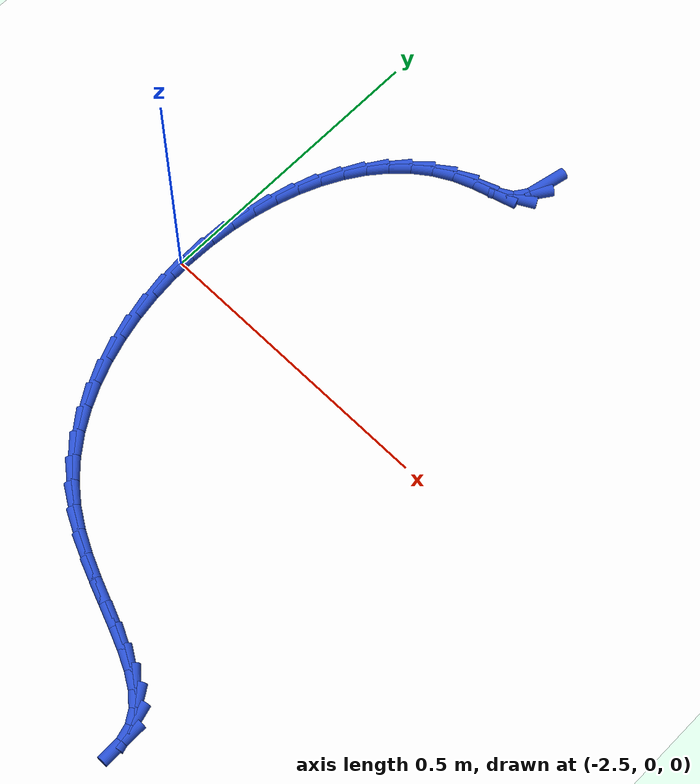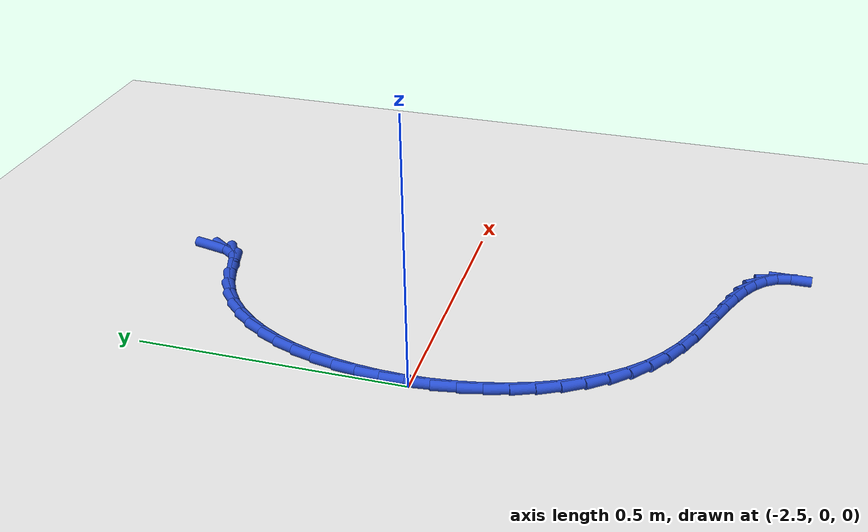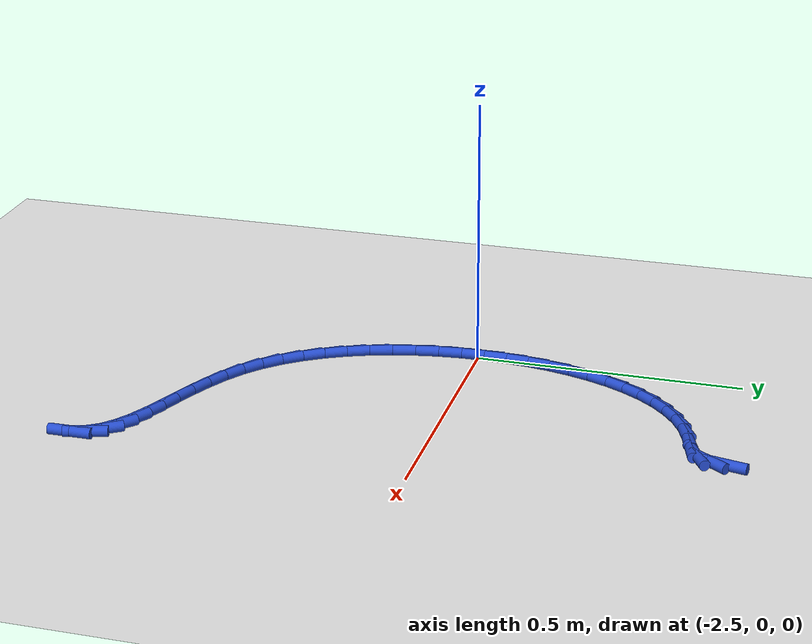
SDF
<sdf version="1.6">
 <world name="default">
  <model name="ground_plane">
   <static>1</static>
   <link name="link">
    <collision name="collision">
     <geometry><plane><normal>0 0 1</normal><size>100 100</size></plane></geometry>
     <surface><friction><ode><mu>100</mu><mu2>50</mu2></ode></friction></surface>
    </collision>
    <visual name="visual">
     <cast_shadows>0</cast_shadows>
     <geometry><plane><normal>0 0 1</normal><size>100 100</size></plane></geometry>
     <material>
      <script><uri>file://media/materials/scripts/gazebo.material</uri><name>Gazebo/WhiteGlow</name></script>
     </material>
    </visual>
   </link>
  </model>
  <model name="line">
   <link name="link_101">
    <pose>-2.1767041656061497 0.5107566457027964 0.01 0 1.57 1.359561104801155</pose>
    <collision name="collision">
     <geometry><cylinder><radius>0.01</radius><length>0.08</length></cylinder></geometry>
    </collision>
    <visual name="visual">
     <material>
      <script><name>Gazebo/Blue</name><uri>file://media/materials/scripts/gazebo.material</uri></script>
     </material>
     <geometry><cylinder><radius>0.01</radius><length>0.08</length></cylinder></geometry>
    </visual>
   </link>
   <link name="link_102">
    <pose>-2.182960266303349 0.48158171489679447 0.01 0 1.57 0.9732929426262962</pose>
    <collision name="collision">
     <geometry><cylinder><radius>0.01</radius><length>0.08</length></cylinder></geometry>
    </collision>
    <visual name="visual">
     <material>
      <script><name>Gazebo/Blue</name><uri>file://media/materials/scripts/gazebo.material</uri></script>
     </material>
     <geometry><cylinder><radius>0.01</radius><length>0.08</length></cylinder></geometry>
    </visual>
   </link>
   <link name="link_103">
    <pose>-2.1982512892744723 0.4591107092444293 0.01 0 1.57 0.5069065793528837</pose>
    <collision name="collision">
     <geometry><cylinder><radius>0.01</radius><length>0.08</length></cylinder></geometry>
    </collision>
    <visual name="visual">
     <material>
      <script><name>Gazebo/Blue</name><uri>file://media/materials/scripts/gazebo.material</uri></script>
     </material>
     <geometry><cylinder><radius>0.01</radius><length>0.08</length></cylinder></geometry>
    </visual>
   </link>
   <link name="link_104">
    <pose>-2.22467470687833 0.44443766862666684 0.01 0 1.57 0.28050700358085706</pose>
    <collision name="collision">
     <geometry><cylinder><radius>0.01</radius><length>0.08</length></cylinder></geometry>
    </collision>
    <visual name="visual">
     <material>
      <script><name>Gazebo/Blue</name><uri>file://media/materials/scripts/gazebo.material</uri></script>
     </material>
     <geometry><cylinder><radius>0.01</radius><length>0.08</length></cylinder></geometry>
    </visual>
   </link>
   <link name="link_105">
    <pose>-2.259283496235016 0.43446676108739046 0.01 0 1.57 0.35877112654474724</pose>
    <collision name="collision">
     <geometry><cylinder><radius>0.01</radius><length>0.08</length></cylinder></geometry>
    </collision>
    <visual name="visual">
     <material>
      <script><name>Gazebo/Blue</name><uri>file://media/materials/scripts/gazebo.material</uri></script>
     </material>
     <geometry><cylinder><radius>0.01</radius><length>0.08</length></cylinder></geometry>
    </visual>
   </link>
   <link name="link_106">
    <pose>-2.293570661433123 0.42160905629376294 0.01 0 1.57 0.5045482568140435</pose>
    <collision name="collision">
     <geometry><cylinder><radius>0.01</radius><length>0.08</length></cylinder></geometry>
    </collision>
    <visual name="visual">
     <material>
      <script><name>Gazebo/Blue</name><uri>file://media/materials/scripts/gazebo.material</uri></script>
     </material>
     <geometry><cylinder><radius>0.01</radius><length>0.08</length></cylinder></geometry>
    </visual>
   </link>
   <link name="link_107">
    <pose>-2.325244186083456 0.4041182103727589 0.01 0 1.57 0.6430362499847649</pose>
    <collision name="collision">
     <geometry><cylinder><radius>0.01</radius><length>0.08</length></cylinder></geometry>
    </collision>
    <visual name="visual">
     <material>
      <script><name>Gazebo/Blue</name><uri>file://media/materials/scripts/gazebo.material</uri></script>
     </material>
     <geometry><cylinder><radius>0.01</radius><length>0.08</length></cylinder></geometry>
    </visual>
   </link>
   <link name="link_108">
    <pose>-2.3542801436351652 0.3823623248923792 0.01 0 1.57 0.7714610408401509</pose>
    <collision name="collision">
     <geometry><cylinder><radius>0.01</radius><length>0.08</length></cylinder></geometry>
    </collision>
    <visual name="visual">
     <material>
      <script><name>Gazebo/Blue</name><uri>file://media/materials/scripts/gazebo.material</uri></script>
     </material>
     <geometry><cylinder><radius>0.01</radius><length>0.08</length></cylinder></geometry>
    </visual>
   </link>
   <link name="link_109">
    <pose>-2.380656428682404 0.35671119919806166 0.01 0 1.57 0.8887162696389381</pose>
    <collision name="collision">
     <geometry><cylinder><radius>0.01</radius><length>0.08</length></cylinder></geometry>
    </collision>
    <visual name="visual">
     <material>
      <script><name>Gazebo/Blue</name><uri>file://media/materials/scripts/gazebo.material</uri></script>
     </material>
     <geometry><cylinder><radius>0.01</radius><length>0.08</length></cylinder></geometry>
    </visual>
   </link>
   <link name="link_110">
    <pose>-2.4043509358193265 0.32753463263524324 0.01 0 1.57 0.9949716406126057</pose>
    <collision name="collision">
     <geometry><cylinder><radius>0.01</radius><length>0.08</length></cylinder></geometry>
    </collision>
    <visual name="visual">
     <material>
      <script><name>Gazebo/Blue</name><uri>file://media/materials/scripts/gazebo.material</uri></script>
     </material>
     <geometry><cylinder><radius>0.01</radius><length>0.08</length></cylinder></geometry>
    </visual>
   </link>
   <link name="link_111">
    <pose>-2.4253415596400854 0.2952024245493614 0.01 0 1.57 1.0912042136968283</pose>
    <collision name="collision">
     <geometry><cylinder><radius>0.01</radius><length>0.08</length></cylinder></geometry>
    </collision>
    <visual name="visual">
     <material>
      <script><name>Gazebo/Blue</name><uri>file://media/materials/scripts/gazebo.material</uri></script>
     </material>
     <geometry><cylinder><radius>0.01</radius><length>0.08</length></cylinder></geometry>
    </visual>
   </link>
   <link name="link_112">
    <pose>-2.4436061947388357 0.26008437428585274 0.01 0 1.57 1.1787930722720554</pose>
    <collision name="collision">
     <geometry><cylinder><radius>0.01</radius><length>0.08</length></cylinder></geometry>
    </collision>
    <visual name="visual">
     <material>
      <script><name>Gazebo/Blue</name><uri>file://media/materials/scripts/gazebo.material</uri></script>
     </material>
     <geometry><cylinder><radius>0.01</radius><length>0.08</length></cylinder></geometry>
    </visual>
   </link>
   <link name="link_113">
    <pose>-2.4591227357097303 0.22255028119015563 0.01 0 1.57 1.2592464931153644</pose>
    <collision name="collision">
     <geometry><cylinder><radius>0.01</radius><length>0.08</length></cylinder></geometry>
    </collision>
    <visual name="visual">
     <material>
      <script><name>Gazebo/Blue</name><uri>file://media/materials/scripts/gazebo.material</uri></script>
     </material>
     <geometry><cylinder><radius>0.01</radius><length>0.08</length></cylinder></geometry>
    </visual>
   </link>
   <link name="link_114">
    <pose>-2.4718690771469225 0.1829699446077068 0.01 0 1.57 1.3340505625070036</pose>
    <collision name="collision">
     <geometry><cylinder><radius>0.01</radius><length>0.08</length></cylinder></geometry>
    </collision>
    <visual name="visual">
     <material>
      <script><name>Gazebo/Blue</name><uri>file://media/materials/scripts/gazebo.material</uri></script>
     </material>
     <geometry><cylinder><radius>0.01</radius><length>0.08</length></cylinder></geometry>
    </visual>
   </link>
   <link name="link_115">
    <pose>-2.481823113644565 0.1417131638839429 0.01 0 1.57 1.404602658116131</pose>
    <collision name="collision">
     <geometry><cylinder><radius>0.01</radius><length>0.08</length></cylinder></geometry>
    </collision>
    <visual name="visual">
     <material>
      <script><name>Gazebo/Blue</name><uri>file://media/materials/scripts/gazebo.material</uri></script>
     </material>
     <geometry><cylinder><radius>0.01</radius><length>0.08</length></cylinder></geometry>
    </visual>
   </link>
   <link name="link_116">
    <pose>-2.4889627397968144 0.09914973836430252 0.01 0 1.57 1.4721956473652422</pose>
    <collision name="collision">
     <geometry><cylinder><radius>0.01</radius><length>0.08</length></cylinder></geometry>
    </collision>
    <visual name="visual">
     <material>
      <script><name>Gazebo/Blue</name><uri>file://media/materials/scripts/gazebo.material</uri></script>
     </material>
     <geometry><cylinder><radius>0.01</radius><length>0.08</length></cylinder></geometry>
    </visual>
   </link>
   <link name="link_117">
    <pose>-2.493265850197822 0.05564946739422212 0.01 0 1.57 1.5380289082575125</pose>
    <collision name="collision">
     <geometry><cylinder><radius>0.01</radius><length>0.08</length></cylinder></geometry>
    </collision>
    <visual name="visual">
     <material>
      <script><name>Gazebo/Blue</name><uri>file://media/materials/scripts/gazebo.material</uri></script>
     </material>
     <geometry><cylinder><radius>0.01</radius><length>0.08</length></cylinder></geometry>
    </visual>
   </link>
   <link name="link_118">
    <pose>-2.494710339441741 0.011582150319139218 0.01 0 1.57 -1.5383610445736737</pose>
    <collision name="collision">
     <geometry><cylinder><radius>0.01</radius><length>0.08</length></cylinder></geometry>
    </collision>
    <visual name="visual">
     <material>
      <script><name>Gazebo/Blue</name><uri>file://media/materials/scripts/gazebo.material</uri></script>
     </material>
     <geometry><cylinder><radius>0.01</radius><length>0.08</length></cylinder></geometry>
    </visual>
   </link>
   <link name="link_119">
    <pose>-2.4932741021227267 -0.03268241351550969 0.01 0 1.57 -1.4727027519654023</pose>
    <collision name="collision">
     <geometry><cylinder><radius>0.01</radius><length>0.08</length></cylinder></geometry>
    </collision>
    <visual name="visual">
     <material>
      <script><name>Gazebo/Blue</name><uri>file://media/materials/scripts/gazebo.material</uri></script>
     </material>
     <geometry><cylinder><radius>0.01</radius><length>0.08</length></cylinder></geometry>
    </visual>
   </link>
   <link name="link_120">
    <pose>-2.488935032834932 -0.07677442476428605 0.01 0 1.57 -1.4055196317840981</pose>
    <collision name="collision">
     <geometry><cylinder><radius>0.01</radius><length>0.08</length></cylinder></geometry>
    </collision>
    <visual name="visual">
     <material>
      <script><name>Gazebo/Blue</name><uri>file://media/materials/scripts/gazebo.material</uri></script>
     </material>
     <geometry><cylinder><radius>0.01</radius><length>0.08</length></cylinder></geometry>
    </visual>
   </link>
   <link name="link_121">
    <pose>-2.481671026172511 -0.12032408408175319 0.01 0 1.57 -1.335738225227873</pose>
    <collision name="collision">
     <geometry><cylinder><radius>0.01</radius><length>0.08</length></cylinder></geometry>
    </collision>
    <visual name="visual">
     <material>
      <script><name>Gazebo/Blue</name><uri>file://media/materials/scripts/gazebo.material</uri></script>
     </material>
     <geometry><cylinder><radius>0.01</radius><length>0.08</length></cylinder></geometry>
    </visual>
   </link>
   <link name="link_122">
    <pose>-2.471459976729616 -0.16296159212247394 0.01 0 1.57 -1.2622690884951209</pose>
    <collision name="collision">
     <geometry><cylinder><radius>0.01</radius><length>0.08</length></cylinder></geometry>
    </collision>
    <visual name="visual">
     <material>
      <script><name>Gazebo/Blue</name><uri>file://media/materials/scripts/gazebo.material</uri></script>
     </material>
     <geometry><cylinder><radius>0.01</radius><length>0.08</length></cylinder></geometry>
    </visual>
   </link>
   <link name="link_123">
    <pose>-2.458279779100401 -0.20431714954101082 0.01 0 1.57 -1.1840107762736802</pose>
    <collision name="collision">
     <geometry><cylinder><radius>0.01</radius><length>0.08</length></cylinder></geometry>
    </collision>
    <visual name="visual">
     <material>
      <script><name>Gazebo/Blue</name><uri>file://media/materials/scripts/gazebo.material</uri></script>
     </material>
     <geometry><cylinder><radius>0.01</radius><length>0.08</length></cylinder></geometry>
    </visual>
   </link>
   <link name="link_124">
    <pose>-2.44210832787902 -0.2440209569919267 0.01 0 1.57 -1.0998789654067145</pose>
    <collision name="collision">
     <geometry><cylinder><radius>0.01</radius><length>0.08</length></cylinder></geometry>
    </collision>
    <visual name="visual">
     <material>
      <script><name>Gazebo/Blue</name><uri>file://media/materials/scripts/gazebo.material</uri></script>
     </material>
     <geometry><cylinder><radius>0.01</radius><length>0.08</length></cylinder></geometry>
    </visual>
   </link>
   <link name="link_125">
    <pose>-2.422923517659627 -0.2817032151297853 0.01 0 1.57 -1.0088732962683042</pose>
    <collision name="collision">
     <geometry><cylinder><radius>0.01</radius><length>0.08</length></cylinder></geometry>
    </collision>
    <visual name="visual">
     <material>
      <script><name>Gazebo/Blue</name><uri>file://media/materials/scripts/gazebo.material</uri></script>
     </material>
     <geometry><cylinder><radius>0.01</radius><length>0.08</length></cylinder></geometry>
    </visual>
   </link>
   <link name="link_126">
    <pose>-2.400703243036376 -0.31699412460914733 0.01 0 1.57 -0.9101954078331373</pose>
    <collision name="collision">
     <geometry><cylinder><radius>0.01</radius><length>0.08</length></cylinder></geometry>
    </collision>
    <visual name="visual">
     <material>
      <script><name>Gazebo/Blue</name><uri>file://media/materials/scripts/gazebo.material</uri></script>
     </material>
     <geometry><cylinder><radius>0.01</radius><length>0.08</length></cylinder></geometry>
    </visual>
   </link>
   <link name="link_127">
    <pose>-2.3754253986034186 -0.3495238860845763 0.01 0 1.57 -0.8034253061857809</pose>
    <collision name="collision">
     <geometry><cylinder><radius>0.01</radius><length>0.08</length></cylinder></geometry>
    </collision>
    <visual name="visual">
     <material>
      <script><name>Gazebo/Blue</name><uri>file://media/materials/scripts/gazebo.material</uri></script>
     </material>
     <geometry><cylinder><radius>0.01</radius><length>0.08</length></cylinder></geometry>
    </visual>
   </link>
   <link name="link_128">
    <pose>-2.347067878954911 -0.37892270021063534 0.01 0 1.57 -0.6887426845273753</pose>
    <collision name="collision">
     <geometry><cylinder><radius>0.01</radius><length>0.08</length></cylinder></geometry>
    </collision>
    <visual name="visual">
     <material>
      <script><name>Gazebo/Blue</name><uri>file://media/materials/scripts/gazebo.material</uri></script>
     </material>
     <geometry><cylinder><radius>0.01</radius><length>0.08</length></cylinder></geometry>
    </visual>
   </link>
   <link name="link_129">
    <pose>-2.315608578685005 -0.4048207676418869 0.01 0 1.57 -0.5727498890043256</pose>
    <collision name="collision">
     <geometry><cylinder><radius>0.01</radius><length>0.08</length></cylinder></geometry>
    </collision>
    <visual name="visual">
     <material>
      <script><name>Gazebo/Blue</name><uri>file://media/materials/scripts/gazebo.material</uri></script>
     </material>
     <geometry><cylinder><radius>0.01</radius><length>0.08</length></cylinder></geometry>
    </visual>
   </link>
   <link name="link_130">
    <pose>-2.2811863936687464 -0.427018088071467 0.01 0 1.57 -0.4811581735482762</pose>
    <collision name="collision">
     <geometry><cylinder><radius>0.01</radius><length>0.08</length></cylinder></geometry>
    </collision>
    <visual name="visual">
     <material>
      <script><name>Gazebo/Blue</name><uri>file://media/materials/scripts/gazebo.material</uri></script>
     </material>
     <geometry><cylinder><radius>0.01</radius><length>0.08</length></cylinder></geometry>
    </visual>
   </link>
   <link name="link_131">
    <pose>-2.244668976723545 -0.4460832403459312 0.01 0 1.57 -0.4190017750603213</pose>
    <collision name="collision">
     <geometry><cylinder><radius>0.01</radius><length>0.08</length></cylinder></geometry>
    </collision>
    <visual name="visual">
     <material>
      <script><name>Gazebo/Blue</name><uri>file://media/materials/scripts/gazebo.material</uri></script>
     </material>
     <geometry><cylinder><radius>0.01</radius><length>0.08</length></cylinder></geometry>
    </visual>
   </link>
   <link name="link_132">
    <pose>-2.207130074043582 -0.46280215845980616 0.01 0 1.57 -0.3842716702611534</pose>
    <collision name="collision">
     <geometry><cylinder><radius>0.01</radius><length>0.08</length></cylinder></geometry>
    </collision>
    <visual name="visual">
     <material>
      <script><name>Gazebo/Blue</name><uri>file://media/materials/scripts/gazebo.material</uri></script>
     </material>
     <geometry><cylinder><radius>0.01</radius><length>0.08</length></cylinder></geometry>
    </visual>
   </link>
   <link name="link_133">
    <pose>-2.169643444569003 -0.4779607898500744 0.01 0 1.57 -0.3767084746154221</pose>
    <collision name="collision">
     <geometry><cylinder><radius>0.01</radius><length>0.08</length></cylinder></geometry>
    </collision>
    <visual name="visual">
     <material>
      <script><name>Gazebo/Blue</name><uri>file://media/materials/scripts/gazebo.material</uri></script>
     </material>
     <geometry><cylinder><radius>0.01</radius><length>0.08</length></cylinder></geometry>
    </visual>
   </link>
   <link name="link_134">
    <pose>-2.1332828472399545 -0.4923450819537202 0.01 0 1.57 -0.3988308046395286</pose>
    <collision name="collision">
     <geometry><cylinder><radius>0.01</radius><length>0.08</length></cylinder></geometry>
    </collision>
    <visual name="visual">
     <material>
      <script><name>Gazebo/Blue</name><uri>file://media/materials/scripts/gazebo.material</uri></script>
     </material>
     <geometry><cylinder><radius>0.01</radius><length>0.08</length></cylinder></geometry>
    </visual>
   </link>
   <link name="link_135">
    <pose>-2.0991220409965834 -0.5067409822077272 0.01 0 1.57 -0.4571470153353592</pose>
    <collision name="collision">
     <geometry><cylinder><radius>0.01</radius><length>0.08</length></cylinder></geometry>
    </collision>
    <visual name="visual">
     <material>
      <script><name>Gazebo/Blue</name><uri>file://media/materials/scripts/gazebo.material</uri></script>
     </material>
     <geometry><cylinder><radius>0.01</radius><length>0.08</length></cylinder></geometry>
    </visual>
   </link>
   <link name="link_136">
    <pose>-2.068234784779034 -0.5219344380490788 0.01 0 1.57 -0.5637171379481309</pose>
    <collision name="collision">
     <geometry><cylinder><radius>0.01</radius><length>0.08</length></cylinder></geometry>
    </collision>
    <visual name="visual">
     <material>
      <script><name>Gazebo/Blue</name><uri>file://media/materials/scripts/gazebo.material</uri></script>
     </material>
     <geometry><cylinder><radius>0.01</radius><length>0.08</length></cylinder></geometry>
    </visual>
   </link>
   <link name="link_137">
    <pose>-2.0416948375274537 -0.5387113969147587 0.01 0 1.57 -0.7364504328727952</pose>
    <collision name="collision">
     <geometry><cylinder><radius>0.01</radius><length>0.08</length></cylinder></geometry>
    </collision>
    <visual name="visual">
     <material>
      <script><name>Gazebo/Blue</name><uri>file://media/materials/scripts/gazebo.material</uri></script>
     </material>
     <geometry><cylinder><radius>0.01</radius><length>0.08</length></cylinder></geometry>
    </visual>
   </link>
   <link name="link_138">
    <pose>-2.020575958181989 -0.5578578062417505 0.01 0 1.57 -0.990400754098486</pose>
    <collision name="collision">
     <geometry><cylinder><radius>0.01</radius><length>0.08</length></cylinder></geometry>
    </collision>
    <visual name="visual">
     <material>
      <script><name>Gazebo/Blue</name><uri>file://media/materials/scripts/gazebo.material</uri></script>
     </material>
     <geometry><cylinder><radius>0.01</radius><length>0.08</length></cylinder></geometry>
    </visual>
   </link>
   <link name="link_139">
    <pose>-2.005951905682786 -0.5801596134670378 0.01 0 1.57 -1.3023503931403515</pose>
    <collision name="collision">
     <geometry><cylinder><radius>0.01</radius><length>0.08</length></cylinder></geometry>
    </collision>
    <visual name="visual">
     <material>
      <script><name>Gazebo/Blue</name><uri>file://media/materials/scripts/gazebo.material</uri></script>
     </material>
     <geometry><cylinder><radius>0.01</radius><length>0.08</length></cylinder></geometry>
    </visual>
   </link>
   <link name="link_140">
    <pose>-1.998755240829511 -0.6063211458527709 0.01 0 1.57 -1.5591685672297706</pose>
    <collision name="collision">
     <geometry><cylinder><radius>0.01</radius><length>0.08</length></cylinder></geometry>
    </collision>
    <visual name="visual">
     <material>
      <script><name>Gazebo/Blue</name><uri>file://media/materials/scripts/gazebo.material</uri></script>
     </material>
     <geometry><cylinder><radius>0.01</radius><length>0.08</length></cylinder></geometry>
    </visual>
   </link>
  </model>
 </world>
</sdf>
